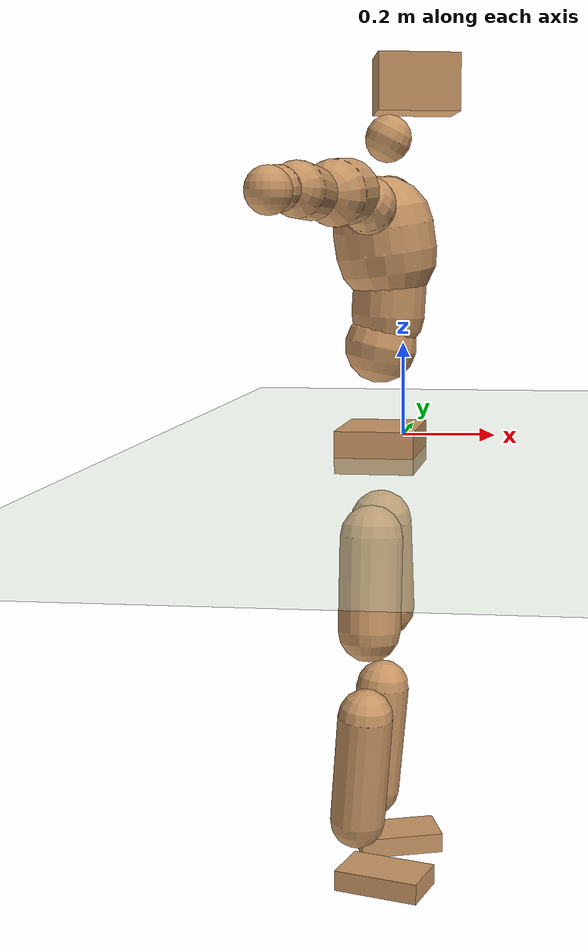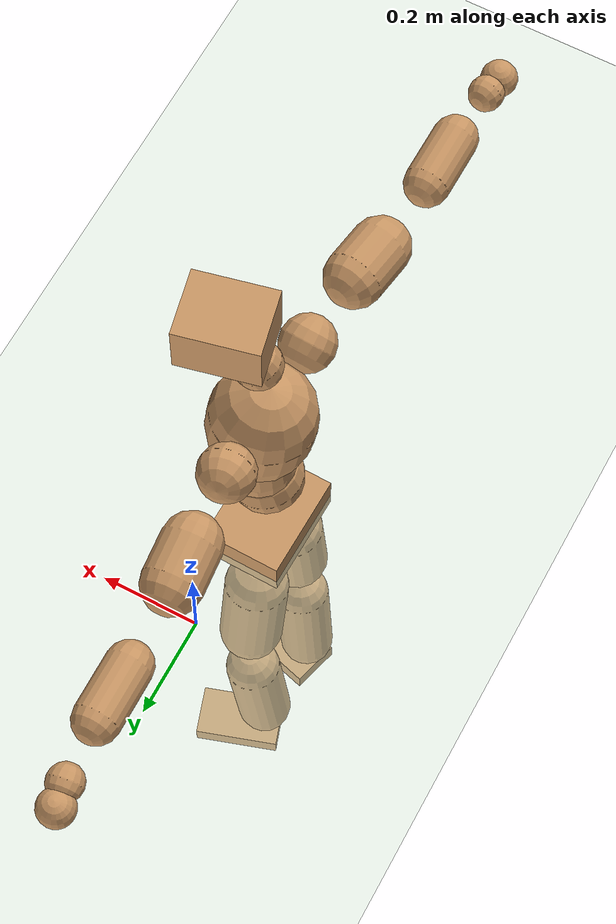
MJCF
<mujoco model="humanoid">
  <compiler coordinate="local" angle="radian"/>
  <default>
    <joint damping="0.0" armature="0.01" stiffness="0.0" limited="true"/>
    <geom conaffinity="1" condim="3" contype="7" margin="0.001" rgba="0.8 0.6 .4 1"/>
  </default>
  <asset>
    <texture type="skybox" builtin="gradient" rgb1=".4 .5 .6" rgb2="0 0 0" width="100" height="100"/>
    <texture builtin="flat" height="1278" mark="cross" markrgb="1 1 1" name="texgeom" random="0.01" rgb1="0.8 0.6 0.4" rgb2="0.8 0.6 0.4" type="cube" width="127"/>
    <texture builtin="checker" height="100" name="texplane" rgb1="0 0 0" rgb2="0.8 0.8 0.8" type="2d" width="100"/>
    <material name="MatPlane" reflectance="0.5" shininess="1" specular="1" texrepeat="60 60" texture="texplane"/>
    <material name="geom" texture="texgeom" texuniform="true"/>
  </asset>
  <worldbody>
    <light cutoff="100" diffuse="1 1 1" dir="-0 0 -1.3" directional="true" exponent="1" pos="0 0 1.3" specular=".1 .1 .1"/>
    <geom conaffinity="1" condim="3" name="floor" pos="0 0 0" rgba="0.8 0.9 0.8 1" size="100 100 .2" type="plane" material="MatPlane"/>
    <body name="Pelvis" pos="-0.0023 -0.2555 0.0167">
      <freejoint name="Pelvis"/>
      <geom type="box" contype="1" conaffinity="1" density="5359.375091" pos="-0.0133 0.0003 -0.0086" size="0.0784 0.1053 0.042" quat="0.9999 0.0000 0.0000 -0.0104" name="Pelvis"/>
      <body name="L_Hip" pos="-0.0255 0.0583 -0.0822">
        <joint name="L_Hip_x" type="hinge" pos="0 0 0" axis="1 0 0" stiffness="1600" damping="160" armature="0.02" range="-180.0000 180.0000"/>
        <joint name="L_Hip_y" type="hinge" pos="0 0 0" axis="0 1 0" stiffness="1600" damping="160" armature="0.02" range="-180.0000 180.0000"/>
        <joint name="L_Hip_z" type="hinge" pos="0 0 0" axis="0 0 1" stiffness="1600" damping="160" armature="0.02" range="-180.0000 180.0000"/>
        <geom type="capsule" contype="1" conaffinity="1" density="2040.816327" size="0.0639" fromto="0.0019 0.0110 -0.0932 0.0059 0.0336 -0.2842" name="L_Hip"/>
        <body name="L_Knee" pos="0.0079 0.0446 -0.3774">
          <joint name="L_Knee_x" type="hinge" pos="0 0 0" axis="1 0 0" stiffness="1600" damping="160" armature="0.02" range="-180.0000 180.0000"/>
          <joint name="L_Knee_y" type="hinge" pos="0 0 0" axis="0 1 0" stiffness="1600" damping="160" armature="0.02" range="-180.0000 180.0000"/>
          <joint name="L_Knee_z" type="hinge" pos="0 0 0" axis="0 0 1" stiffness="1600" damping="160" armature="0.02" range="-180.0000 180.0000"/>
          <geom type="capsule" contype="1" conaffinity="1" density="1234.567901" size="0.0564" fromto="-0.0078 -0.0029 -0.0860 -0.0287 -0.0108 -0.3173" name="L_Knee"/>
          <body name="L_Ankle" pos="-0.0364 -0.0137 -0.4033">
            <joint name="L_Ankle_x" type="hinge" pos="0 0 0" axis="1 0 0" stiffness="1600" damping="160" armature="0.02" range="-180.0000 180.0000"/>
            <joint name="L_Ankle_y" type="hinge" pos="0 0 0" axis="0 1 0" stiffness="1600" damping="160" armature="0.02" range="-180.0000 180.0000"/>
            <joint name="L_Ankle_z" type="hinge" pos="0 0 0" axis="0 0 1" stiffness="1600" damping="160" armature="0.02" range="-180.0000 180.0000"/>
            <geom type="box" contype="1" conaffinity="1" density="999.999996" pos="0.0604 0.0201 -0.0295" size="0.0885 0.0519 0.0207" quat="0.9871 0.0000 0.0000 0.1601" name="L_Ankle"/>
            <body name="L_Toe" pos="0.1208 0.0403 -0.0591">
              <joint name="L_Toe_x" type="hinge" pos="0 0 0" axis="1 0 0" stiffness="1000" damping="100" armature="0.02" range="-180.0000 180.0000"/>
              <joint name="L_Toe_y" type="hinge" pos="0 0 0" axis="0 1 0" stiffness="1000" damping="100" armature="0.02" range="-180.0000 180.0000"/>
              <joint name="L_Toe_z" type="hinge" pos="0 0 0" axis="0 0 1" stiffness="1000" damping="100" armature="0.02" range="-180.0000 180.0000"/>
              <geom type="box" contype="1" conaffinity="1" density="7946376.070816" pos="0.0000 0.0000 0.0296" size="0.0011 0.0026 0.001" quat="0.9863 0.0000 0.0000 0.1649" name="L_Toe"/>
            </body>
          </body>
        </body>
      </body>
      <body name="R_Hip" pos="-0.0238 -0.0603 -0.0884">
        <joint name="R_Hip_x" type="hinge" pos="0 0 0" axis="1 0 0" stiffness="1600" damping="160" armature="0.02" range="-180.0000 180.0000"/>
        <joint name="R_Hip_y" type="hinge" pos="0 0 0" axis="0 1 0" stiffness="1600" damping="160" armature="0.02" range="-180.0000 180.0000"/>
        <joint name="R_Hip_z" type="hinge" pos="0 0 0" axis="0 0 1" stiffness="1600" damping="160" armature="0.02" range="-180.0000 180.0000"/>
        <geom type="capsule" contype="1" conaffinity="1" density="2040.816327" size="0.063" fromto="-0.0010 -0.0104 -0.0924 -0.0030 -0.0318 -0.2814" name="R_Hip"/>
        <body name="R_Knee" pos="-0.0039 -0.0422 -0.3739">
          <joint name="R_Knee_x" type="hinge" pos="0 0 0" axis="1 0 0" stiffness="1600" damping="160" armature="0.02" range="-180.0000 180.0000"/>
          <joint name="R_Knee_y" type="hinge" pos="0 0 0" axis="0 1 0" stiffness="1600" damping="160" armature="0.02" range="-180.0000 180.0000"/>
          <joint name="R_Knee_z" type="hinge" pos="0 0 0" axis="0 0 1" stiffness="1600" damping="160" armature="0.02" range="-180.0000 180.0000"/>
          <geom type="capsule" contype="1" conaffinity="1" density="1234.567901" size="0.0564" fromto="-0.0072 0.0041 -0.0860 -0.0261 0.0149 -0.3113" name="R_Knee"/>
          <body name="R_Ankle" pos="-0.0333 0.019 -0.3973">
            <joint name="R_Ankle_x" type="hinge" pos="0 0 0" axis="1 0 0" stiffness="1600" damping="160" armature="0.02" range="-180.0000 180.0000"/>
            <joint name="R_Ankle_y" type="hinge" pos="0 0 0" axis="0 1 0" stiffness="1600" damping="160" armature="0.02" range="-180.0000 180.0000"/>
            <joint name="R_Ankle_z" type="hinge" pos="0 0 0" axis="0 0 1" stiffness="1600" damping="160" armature="0.02" range="-180.0000 180.0000"/>
            <geom type="box" contype="1" conaffinity="1" density="999.999975" pos="0.0646 -0.0177 -0.0305" size="0.0893 0.052 0.0213" quat="0.9911 0.0000 0.0000 -0.1330" name="R_Ankle"/>
            <body name="R_Toe" pos="0.1293 -0.0353 -0.061">
              <joint name="R_Toe_x" type="hinge" pos="0 0 0" axis="1 0 0" stiffness="1000" damping="100" armature="0.02" range="-180.0000 180.0000"/>
              <joint name="R_Toe_y" type="hinge" pos="0 0 0" axis="0 1 0" stiffness="1000" damping="100" armature="0.02" range="-180.0000 180.0000"/>
              <joint name="R_Toe_z" type="hinge" pos="0 0 0" axis="0 0 1" stiffness="1000" damping="100" armature="0.02" range="-180.0000 180.0000"/>
              <geom type="box" contype="1" conaffinity="1" density="7962317.737422" pos="0.0000 0.0000 0.0315" size="0.001 0.0026 0.0011" quat="0.9923 0.0000 0.0000 -0.1240" name="R_Toe"/>
            </body>
          </body>
        </body>
      </body>
      <body name="Torso" pos="-0.0305 0.0036 0.1191">
        <joint name="Torso_x" type="hinge" pos="0 0 0" axis="1 0 0" stiffness="2000" damping="200" armature="0.02" range="-180.0000 180.0000"/>
        <joint name="Torso_y" type="hinge" pos="0 0 0" axis="0 1 0" stiffness="2000" damping="200" armature="0.02" range="-180.0000 180.0000"/>
        <joint name="Torso_z" type="hinge" pos="0 0 0" axis="0 0 1" stiffness="2000" damping="200" armature="0.02" range="-180.0000 180.0000"/>
        <geom type="capsule" contype="1" conaffinity="1" density="2040.816327" size="0.0722" fromto="0.0153 0.0022 0.0730 0.0157 0.0023 0.0749" name="Torso"/>
        <body name="Spine" pos="0.031 0.0046 0.1479">
          <joint name="Spine_x" type="hinge" pos="0 0 0" axis="1 0 0" stiffness="2000" damping="200" armature="0.02" range="-180.0000 180.0000"/>
          <joint name="Spine_y" type="hinge" pos="0 0 0" axis="0 1 0" stiffness="2000" damping="200" armature="0.02" range="-180.0000 180.0000"/>
          <joint name="Spine_z" type="hinge" pos="0 0 0" axis="0 0 1" stiffness="2000" damping="200" armature="0.02" range="-180.0000 180.0000"/>
          <geom type="capsule" contype="1" conaffinity="1" density="2040.816327" size="0.0733" fromto="0.0051 -0.0019 0.0731 -0.0009 0.0003 -0.0123" name="Spine"/>
          <body name="Chest" pos="0.0042 -0.0016 0.0607">
            <joint name="Chest_x" type="hinge" pos="0 0 0" axis="1 0 0" stiffness="2000" damping="200" armature="0.02" range="-180.0000 180.0000"/>
            <joint name="Chest_y" type="hinge" pos="0 0 0" axis="0 1 0" stiffness="2000" damping="200" armature="0.02" range="-180.0000 180.0000"/>
            <joint name="Chest_z" type="hinge" pos="0 0 0" axis="0 0 1" stiffness="2000" damping="200" armature="0.02" range="-180.0000 180.0000"/>
            <geom type="capsule" contype="1" conaffinity="1" density="2040.816327" size="0.1004" fromto="-0.0134 -0.0061 0.0993 -0.0066 -0.0030 0.0490" name="Chest"/>
            <body name="Neck" pos="-0.0281 -0.0149 0.2192">
              <joint name="Neck_x" type="hinge" pos="0 0 0" axis="1 0 0" stiffness="1000" damping="100" armature="0.02" range="-180.0000 180.0000"/>
              <joint name="Neck_y" type="hinge" pos="0 0 0" axis="0 1 0" stiffness="1000" damping="100" armature="0.02" range="-180.0000 180.0000"/>
              <joint name="Neck_z" type="hinge" pos="0 0 0" axis="0 0 1" stiffness="1000" damping="100" armature="0.02" range="-180.0000 180.0000"/>
              <geom type="capsule" contype="1" conaffinity="1" density="1000" size="0.0454" fromto="0.0255 0.0051 0.0499 0.0264 0.0052 0.0517" name="Neck"/>
              <body name="Head" pos="0.0518 0.0103 0.1016">
                <joint name="Head_x" type="hinge" pos="0 0 0" axis="1 0 0" stiffness="1000" damping="100" armature="0.02" range="-180.0000 180.0000"/>
                <joint name="Head_y" type="hinge" pos="0 0 0" axis="0 1 0" stiffness="1000" damping="100" armature="0.02" range="-180.0000 180.0000"/>
                <joint name="Head_z" type="hinge" pos="0 0 0" axis="0 0 1" stiffness="1000" damping="100" armature="0.02" range="-180.0000 180.0000"/>
                <geom type="box" contype="1" conaffinity="1" density="2250.000074" pos="0.0269 0.0061 0.0518" size="0.0791 0.0643 0.0544" quat="0.9937 0.0000 0.0000 0.1120" name="Head"/>
              </body>
            </body>
            <body name="L_Thorax" pos="-0.0118 0.0766 0.1141">
              <joint name="L_Thorax_x" type="hinge" pos="0 0 0" axis="1 0 0" stiffness="1000" damping="100" armature="0.02" range="-180.0000 180.0000"/>
              <joint name="L_Thorax_y" type="hinge" pos="0 0 0" axis="0 1 0" stiffness="1000" damping="100" armature="0.02" range="-180.0000 180.0000"/>
              <joint name="L_Thorax_z" type="hinge" pos="0 0 0" axis="0 0 1" stiffness="1000" damping="100" armature="0.02" range="-180.0000 180.0000"/>
              <geom type="capsule" contype="1" conaffinity="1" density="1000" size="0.0547" fromto="-0.0093 0.0647 0.0250 -0.0096 0.0665 0.0258" name="L_Thorax"/>
              <body name="L_Shoulder" pos="-0.0189 0.1312 0.0508">
                <joint name="L_Shoulder_x" type="hinge" pos="0 0 0" axis="1 0 0" stiffness="1000" damping="100" armature="0.02" range="-720.0000 720.0000"/>
                <joint name="L_Shoulder_y" type="hinge" pos="0 0 0" axis="0 1 0" stiffness="1000" damping="100" armature="0.02" range="-720.0000 720.0000"/>
                <joint name="L_Shoulder_z" type="hinge" pos="0 0 0" axis="0 0 1" stiffness="1000" damping="100" armature="0.02" range="-720.0000 720.0000"/>
                <geom type="capsule" contype="1" conaffinity="1" density="1000" size="0.057" fromto="-0.0073 0.0865 -0.0066 -0.0140 0.1657 -0.0127" name="L_Shoulder"/>
                <body name="L_Elbow" pos="-0.0213 0.2522 -0.0194">
                  <joint name="L_Elbow_x" type="hinge" pos="0 0 0" axis="1 0 0" stiffness="1000" damping="100" armature="0.02" range="-720.0000 720.0000"/>
                  <joint name="L_Elbow_y" type="hinge" pos="0 0 0" axis="0 1 0" stiffness="1000" damping="100" armature="0.02" range="-720.0000 720.0000"/>
                  <joint name="L_Elbow_z" type="hinge" pos="0 0 0" axis="0 0 1" stiffness="1000" damping="100" armature="0.02" range="-720.0000 720.0000"/>
                  <geom type="capsule" contype="1" conaffinity="1" density="1000" size="0.0437" fromto="-0.0014 0.0736 0.0038 -0.0035 0.1851 0.0096" name="L_Elbow"/>
                  <body name="L_Wrist" pos="-0.0049 0.2587 0.0134">
                    <joint name="L_Wrist_x" type="hinge" pos="0 0 0" axis="1 0 0" stiffness="600" damping="60" armature="0.02" range="-180.0000 180.0000"/>
                    <joint name="L_Wrist_y" type="hinge" pos="0 0 0" axis="0 1 0" stiffness="600" damping="60" armature="0.02" range="-180.0000 180.0000"/>
                    <joint name="L_Wrist_z" type="hinge" pos="0 0 0" axis="0 0 1" stiffness="600" damping="60" armature="0.02" range="-180.0000 180.0000"/>
                    <geom type="capsule" contype="1" conaffinity="1" density="1000" size="0.034" fromto="-0.0075 0.0420 -0.0054 -0.0078 0.0440 -0.0056" name="L_Wrist"/>
                    <body name="L_Hand" pos="-0.0153 0.086 -0.011">
                      <joint name="L_Hand_x" type="hinge" pos="0 0 0" axis="1 0 0" stiffness="600" damping="60" armature="0.02" range="-180.0000 180.0000"/>
                      <joint name="L_Hand_y" type="hinge" pos="0 0 0" axis="0 1 0" stiffness="600" damping="60" armature="0.02" range="-180.0000 180.0000"/>
                      <joint name="L_Hand_z" type="hinge" pos="0 0 0" axis="0 0 1" stiffness="600" damping="60" armature="0.02" range="-180.0000 180.0000"/>
                      <geom type="sphere" contype="1" conaffinity="1" density="1000" size="0.0354" pos="0.0000 0.0000 0.0000" name="L_Hand"/>
                    </body>
                  </body>
                </body>
              </body>
            </body>
            <body name="R_Thorax" pos="-0.0201 -0.089 0.1118">
              <joint name="R_Thorax_x" type="hinge" pos="0 0 0" axis="1 0 0" stiffness="1000" damping="100" armature="0.02" range="-180.0000 180.0000"/>
              <joint name="R_Thorax_y" type="hinge" pos="0 0 0" axis="0 1 0" stiffness="1000" damping="100" armature="0.02" range="-180.0000 180.0000"/>
              <joint name="R_Thorax_z" type="hinge" pos="0 0 0" axis="0 0 1" stiffness="1000" damping="100" armature="0.02" range="-180.0000 180.0000"/>
              <geom type="capsule" contype="1" conaffinity="1" density="1000" size="0.0546" fromto="-0.0042 -0.0598 0.0263 -0.0043 -0.0616 0.0271" name="R_Thorax"/>
              <body name="R_Shoulder" pos="-0.0085 -0.1213 0.0534">
                <joint name="R_Shoulder_x" type="hinge" pos="0 0 0" axis="1 0 0" stiffness="1000" damping="100" armature="0.02" range="-720.0000 720.0000"/>
                <joint name="R_Shoulder_y" type="hinge" pos="0 0 0" axis="0 1 0" stiffness="1000" damping="100" armature="0.02" range="-720.0000 720.0000"/>
                <joint name="R_Shoulder_z" type="hinge" pos="0 0 0" axis="0 0 1" stiffness="1000" damping="100" armature="0.02" range="-720.0000 720.0000"/>
                <geom type="capsule" contype="1" conaffinity="1" density="1000" size="0.058" fromto="-0.0110 -0.0870 -0.0065 -0.0214 -0.1693 -0.0126" name="R_Shoulder"/>
                <body name="R_Elbow" pos="-0.0324 -0.2563 -0.0191">
                  <joint name="R_Elbow_x" type="hinge" pos="0 0 0" axis="1 0 0" stiffness="1000" damping="100" armature="0.02" range="-720.0000 720.0000"/>
                  <joint name="R_Elbow_y" type="hinge" pos="0 0 0" axis="0 1 0" stiffness="1000" damping="100" armature="0.02" range="-720.0000 720.0000"/>
                  <joint name="R_Elbow_z" type="hinge" pos="0 0 0" axis="0 0 1" stiffness="1000" damping="100" armature="0.02" range="-720.0000 720.0000"/>
                  <geom type="capsule" contype="1" conaffinity="1" density="1000" size="0.0442" fromto="-0.0008 -0.0742 0.0009 -0.0019 -0.1869 0.0024" name="R_Elbow"/>
                  <body name="R_Wrist" pos="-0.0027 -0.261 0.0033">
                    <joint name="R_Wrist_x" type="hinge" pos="0 0 0" axis="1 0 0" stiffness="600" damping="60" armature="0.02" range="-180.0000 180.0000"/>
                    <joint name="R_Wrist_y" type="hinge" pos="0 0 0" axis="0 1 0" stiffness="600" damping="60" armature="0.02" range="-180.0000 180.0000"/>
                    <joint name="R_Wrist_z" type="hinge" pos="0 0 0" axis="0 0 1" stiffness="600" damping="60" armature="0.02" range="-180.0000 180.0000"/>
                    <geom type="capsule" contype="1" conaffinity="1" density="1000" size="0.0343" fromto="-0.0049 -0.0427 -0.0042 -0.0051 -0.0447 -0.0044" name="R_Wrist"/>
                    <body name="R_Hand" pos="-0.01 -0.0874 -0.0086">
                      <joint name="R_Hand_x" type="hinge" pos="0 0 0" axis="1 0 0" stiffness="600" damping="60" armature="0.02" range="-180.0000 180.0000"/>
                      <joint name="R_Hand_y" type="hinge" pos="0 0 0" axis="0 1 0" stiffness="600" damping="60" armature="0.02" range="-180.0000 180.0000"/>
                      <joint name="R_Hand_z" type="hinge" pos="0 0 0" axis="0 0 1" stiffness="600" damping="60" armature="0.02" range="-180.0000 180.0000"/>
                      <geom type="sphere" contype="1" conaffinity="1" density="1000" size="0.0356" pos="0.0000 0.0000 0.0000" name="R_Hand"/>
                    </body>
                  </body>
                </body>
              </body>
            </body>
          </body>
        </body>
      </body>
    </body>
  </worldbody>
  <actuator>
    <motor name="L_Hip_x" joint="L_Hip_x" gear="500"/>
    <motor name="L_Hip_y" joint="L_Hip_y" gear="500"/>
    <motor name="L_Hip_z" joint="L_Hip_z" gear="500"/>
    <motor name="L_Knee_x" joint="L_Knee_x" gear="500"/>
    <motor name="L_Knee_y" joint="L_Knee_y" gear="500"/>
    <motor name="L_Knee_z" joint="L_Knee_z" gear="500"/>
    <motor name="L_Ankle_x" joint="L_Ankle_x" gear="500"/>
    <motor name="L_Ankle_y" joint="L_Ankle_y" gear="500"/>
    <motor name="L_Ankle_z" joint="L_Ankle_z" gear="500"/>
    <motor name="L_Toe_x" joint="L_Toe_x" gear="500"/>
    <motor name="L_Toe_y" joint="L_Toe_y" gear="500"/>
    <motor name="L_Toe_z" joint="L_Toe_z" gear="500"/>
    <motor name="R_Hip_x" joint="R_Hip_x" gear="500"/>
    <motor name="R_Hip_y" joint="R_Hip_y" gear="500"/>
    <motor name="R_Hip_z" joint="R_Hip_z" gear="500"/>
    <motor name="R_Knee_x" joint="R_Knee_x" gear="500"/>
    <motor name="R_Knee_y" joint="R_Knee_y" gear="500"/>
    <motor name="R_Knee_z" joint="R_Knee_z" gear="500"/>
    <motor name="R_Ankle_x" joint="R_Ankle_x" gear="500"/>
    <motor name="R_Ankle_y" joint="R_Ankle_y" gear="500"/>
    <motor name="R_Ankle_z" joint="R_Ankle_z" gear="500"/>
    <motor name="R_Toe_x" joint="R_Toe_x" gear="500"/>
    <motor name="R_Toe_y" joint="R_Toe_y" gear="500"/>
    <motor name="R_Toe_z" joint="R_Toe_z" gear="500"/>
    <motor name="Torso_x" joint="Torso_x" gear="500"/>
    <motor name="Torso_y" joint="Torso_y" gear="500"/>
    <motor name="Torso_z" joint="Torso_z" gear="500"/>
    <motor name="Spine_x" joint="Spine_x" gear="500"/>
    <motor name="Spine_y" joint="Spine_y" gear="500"/>
    <motor name="Spine_z" joint="Spine_z" gear="500"/>
    <motor name="Chest_x" joint="Chest_x" gear="500"/>
    <motor name="Chest_y" joint="Chest_y" gear="500"/>
    <motor name="Chest_z" joint="Chest_z" gear="500"/>
    <motor name="Neck_x" joint="Neck_x" gear="500"/>
    <motor name="Neck_y" joint="Neck_y" gear="500"/>
    <motor name="Neck_z" joint="Neck_z" gear="500"/>
    <motor name="Head_x" joint="Head_x" gear="500"/>
    <motor name="Head_y" joint="Head_y" gear="500"/>
    <motor name="Head_z" joint="Head_z" gear="500"/>
    <motor name="L_Thorax_x" joint="L_Thorax_x" gear="500"/>
    <motor name="L_Thorax_y" joint="L_Thorax_y" gear="500"/>
    <motor name="L_Thorax_z" joint="L_Thorax_z" gear="500"/>
    <motor name="L_Shoulder_x" joint="L_Shoulder_x" gear="500"/>
    <motor name="L_Shoulder_y" joint="L_Shoulder_y" gear="500"/>
    <motor name="L_Shoulder_z" joint="L_Shoulder_z" gear="500"/>
    <motor name="L_Elbow_x" joint="L_Elbow_x" gear="500"/>
    <motor name="L_Elbow_y" joint="L_Elbow_y" gear="500"/>
    <motor name="L_Elbow_z" joint="L_Elbow_z" gear="500"/>
    <motor name="L_Wrist_x" joint="L_Wrist_x" gear="500"/>
    <motor name="L_Wrist_y" joint="L_Wrist_y" gear="500"/>
    <motor name="L_Wrist_z" joint="L_Wrist_z" gear="500"/>
    <motor name="L_Hand_x" joint="L_Hand_x" gear="500"/>
    <motor name="L_Hand_y" joint="L_Hand_y" gear="500"/>
    <motor name="L_Hand_z" joint="L_Hand_z" gear="500"/>
    <motor name="R_Thorax_x" joint="R_Thorax_x" gear="500"/>
    <motor name="R_Thorax_y" joint="R_Thorax_y" gear="500"/>
    <motor name="R_Thorax_z" joint="R_Thorax_z" gear="500"/>
    <motor name="R_Shoulder_x" joint="R_Shoulder_x" gear="500"/>
    <motor name="R_Shoulder_y" joint="R_Shoulder_y" gear="500"/>
    <motor name="R_Shoulder_z" joint="R_Shoulder_z" gear="500"/>
    <motor name="R_Elbow_x" joint="R_Elbow_x" gear="500"/>
    <motor name="R_Elbow_y" joint="R_Elbow_y" gear="500"/>
    <motor name="R_Elbow_z" joint="R_Elbow_z" gear="500"/>
    <motor name="R_Wrist_x" joint="R_Wrist_x" gear="500"/>
    <motor name="R_Wrist_y" joint="R_Wrist_y" gear="500"/>
    <motor name="R_Wrist_z" joint="R_Wrist_z" gear="500"/>
    <motor name="R_Hand_x" joint="R_Hand_x" gear="500"/>
    <motor name="R_Hand_y" joint="R_Hand_y" gear="500"/>
    <motor name="R_Hand_z" joint="R_Hand_z" gear="500"/>
  </actuator>
  <contact>
    <exclude body1="Torso" body2="Chest"/>
    <exclude body1="Head" body2="Chest"/>
    <exclude body1="R_Knee" body2="R_Toe"/>
    <exclude body1="R_Knee" body2="L_Ankle"/>
    <exclude body1="R_Knee" body2="L_Toe"/>
    <exclude body1="L_Knee" body2="L_Toe"/>
    <exclude body1="L_Knee" body2="R_Ankle"/>
    <exclude body1="L_Knee" body2="R_Toe"/>
    <exclude body1="L_Shoulder" body2="Chest"/>
    <exclude body1="R_Shoulder" body2="Chest"/>
  </contact>
  <sensor/>
  <size njmax="700" nconmax="700"/>
</mujoco>
